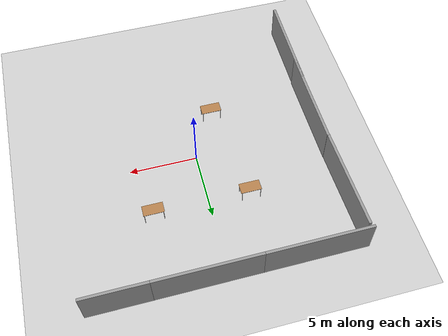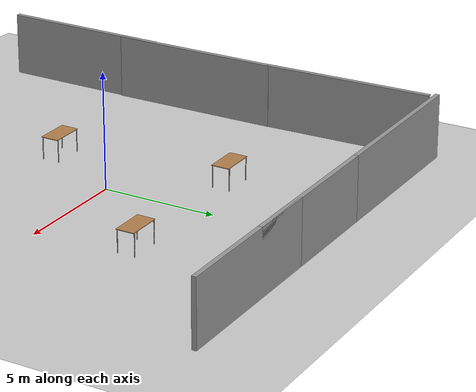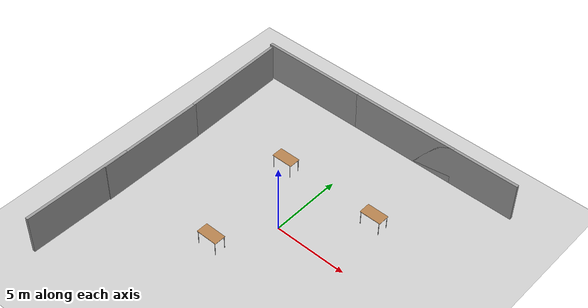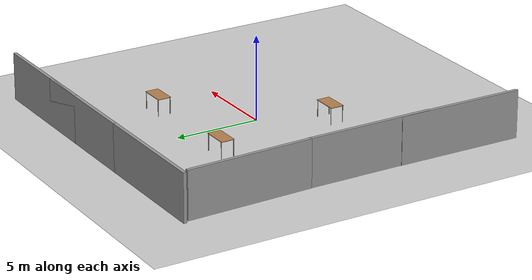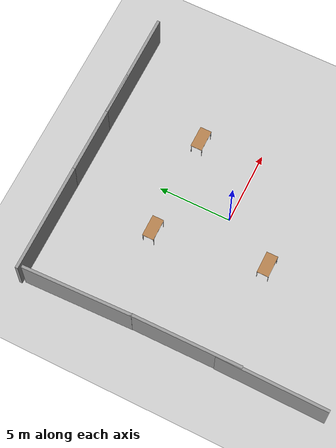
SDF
<sdf version="1.4">
 <world name="default">
  <light name="sun" type="directional">
   <pose>0 0 10 0 -0 0</pose>
   <diffuse>0.8 0.8 0.8 1</diffuse>
   <specular>0.2 0.2 0.2 1</specular>
   <attenuation>
    <range>1000</range>
    <constant>0.9</constant>
    <linear>0.01</linear>
    <quadratic>0.001</quadratic>
   </attenuation>
   <direction>-0.5 0.1 -0.9</direction>
  </light>
  <model name="ground_plane">
   <static>1</static>
   <link name="link">
    <collision name="collision">
     <geometry><plane><normal>0 0 1</normal><size>100 100</size></plane></geometry>
     <surface><friction><ode><mu>100</mu><mu2>50</mu2></ode></friction></surface>
    </collision>
    <visual name="visual">
     <cast_shadows>0</cast_shadows>
     <geometry><plane><normal>0 0 1</normal><size>100 100</size></plane></geometry>
     <material>
      <script><uri>file://media/materials/scripts/gazebo.material</uri><name>Gazebo/Grey</name></script>
     </material>
    </visual>
    <velocity_decay><linear>0</linear><angular>0</angular></velocity_decay>
   </link>
  </model>
  <physics type="ode">
   <max_step_size>0.001</max_step_size>
   <real_time_factor>1</real_time_factor>
   <real_time_update_rate>250</real_time_update_rate>
   <gravity>0 0 -9.8</gravity>
  </physics>
  <scene><ambient>0.4 0.4 0.4 1</ambient><background>0.7 0.7 0.7 1</background><shadows>1</shadows></scene>
  <model name="table">
   <static>1</static>
   <link name="link">
    <collision name="surface">
     <pose>0 0 1 0 -0 0</pose>
     <geometry><box><size>1.5 0.8 0.03</size></box></geometry>
    </collision>
    <visual name="visual1">
     <pose>0 0 1 0 -0 0</pose>
     <geometry><box><size>1.5 0.8 0.03</size></box></geometry>
     <material>
      <script><uri>file://media/materials/scripts/gazebo.material</uri><name>Gazebo/Wood</name></script>
     </material>
    </visual>
    <collision name="front_left_leg">
     <pose>0.68 0.38 0.5 0 -0 0</pose>
     <geometry><cylinder><radius>0.02</radius><length>1</length></cylinder></geometry>
    </collision>
    <visual name="front_left_leg">
     <pose>0.68 0.38 0.5 0 -0 0</pose>
     <geometry><cylinder><radius>0.02</radius><length>1</length></cylinder></geometry>
     <material>
      <script><uri>file://media/materials/scripts/gazebo.material</uri><name>Gazebo/Grey</name></script>
     </material>
    </visual>
    <collision name="front_right_leg">
     <pose>0.68 -0.38 0.5 0 -0 0</pose>
     <geometry><cylinder><radius>0.02</radius><length>1</length></cylinder></geometry>
    </collision>
    <visual name="front_right_leg">
     <pose>0.68 -0.38 0.5 0 -0 0</pose>
     <geometry><cylinder><radius>0.02</radius><length>1</length></cylinder></geometry>
     <material>
      <script><uri>file://media/materials/scripts/gazebo.material</uri><name>Gazebo/Grey</name></script>
     </material>
    </visual>
    <collision name="back_right_leg">
     <pose>-0.68 -0.38 0.5 0 -0 0</pose>
     <geometry><cylinder><radius>0.02</radius><length>1</length></cylinder></geometry>
    </collision>
    <visual name="back_right_leg">
     <pose>-0.68 -0.38 0.5 0 -0 0</pose>
     <geometry><cylinder><radius>0.02</radius><length>1</length></cylinder></geometry>
     <material>
      <script><uri>file://media/materials/scripts/gazebo.material</uri><name>Gazebo/Grey</name></script>
     </material>
    </visual>
    <collision name="back_left_leg">
     <pose>-0.68 0.38 0.5 0 -0 0</pose>
     <geometry><cylinder><radius>0.02</radius><length>1</length></cylinder></geometry>
    </collision>
    <visual name="back_left_leg">
     <pose>-0.68 0.38 0.5 0 -0 0</pose>
     <geometry><cylinder><radius>0.02</radius><length>1</length></cylinder></geometry>
     <material>
      <script><uri>file://media/materials/scripts/gazebo.material</uri><name>Gazebo/Grey</name></script>
     </material>
    </visual>
    <velocity_decay><linear>0</linear><angular>0</angular></velocity_decay>
   </link>
   <pose>4 4 0 0 -0 0</pose>
  </model>
  <model name="table_0">
   <static>1</static>
   <link name="link">
    <collision name="surface">
     <pose>0 0 1 0 -0 0</pose>
     <geometry><box><size>1.5 0.8 0.03</size></box></geometry>
    </collision>
    <visual name="visual1">
     <pose>0 0 1 0 -0 0</pose>
     <geometry><box><size>1.5 0.8 0.03</size></box></geometry>
     <material>
      <script><uri>file://media/materials/scripts/gazebo.material</uri><name>Gazebo/Wood</name></script>
     </material>
    </visual>
    <collision name="front_left_leg">
     <pose>0.68 0.38 0.5 0 -0 0</pose>
     <geometry><cylinder><radius>0.02</radius><length>1</length></cylinder></geometry>
    </collision>
    <visual name="front_left_leg">
     <pose>0.68 0.38 0.5 0 -0 0</pose>
     <geometry><cylinder><radius>0.02</radius><length>1</length></cylinder></geometry>
     <material>
      <script><uri>file://media/materials/scripts/gazebo.material</uri><name>Gazebo/Grey</name></script>
     </material>
    </visual>
    <collision name="front_right_leg">
     <pose>0.68 -0.38 0.5 0 -0 0</pose>
     <geometry><cylinder><radius>0.02</radius><length>1</length></cylinder></geometry>
    </collision>
    <visual name="front_right_leg">
     <pose>0.68 -0.38 0.5 0 -0 0</pose>
     <geometry><cylinder><radius>0.02</radius><length>1</length></cylinder></geometry>
     <material>
      <script><uri>file://media/materials/scripts/gazebo.material</uri><name>Gazebo/Grey</name></script>
     </material>
    </visual>
    <collision name="back_right_leg">
     <pose>-0.68 -0.38 0.5 0 -0 0</pose>
     <geometry><cylinder><radius>0.02</radius><length>1</length></cylinder></geometry>
    </collision>
    <visual name="back_right_leg">
     <pose>-0.68 -0.38 0.5 0 -0 0</pose>
     <geometry><cylinder><radius>0.02</radius><length>1</length></cylinder></geometry>
     <material>
      <script><uri>file://media/materials/scripts/gazebo.material</uri><name>Gazebo/Grey</name></script>
     </material>
    </visual>
    <collision name="back_left_leg">
     <pose>-0.68 0.38 0.5 0 -0 0</pose>
     <geometry><cylinder><radius>0.02</radius><length>1</length></cylinder></geometry>
    </collision>
    <visual name="back_left_leg">
     <pose>-0.68 0.38 0.5 0 -0 0</pose>
     <geometry><cylinder><radius>0.02</radius><length>1</length></cylinder></geometry>
     <material>
      <script><uri>file://media/materials/scripts/gazebo.material</uri><name>Gazebo/Grey</name></script>
     </material>
    </visual>
    <velocity_decay><linear>0</linear><angular>0</angular></velocity_decay>
   </link>
   <pose>-2 -3.58187 0 0 -0 0</pose>
  </model>
  <model name="grey_wall">
   <static>1</static>
   <link name="link">
    <pose>0 0 1.4 0 -0 0</pose>
    <collision name="collision"><geometry><box><size>7.5 0.2 2.8</size></box></geometry></collision>
    <visual name="visual">
     <cast_shadows>0</cast_shadows>
     <geometry><box><size>7.5 0.2 2.8</size></box></geometry>
     <material>
      <script>
       <uri>model://grey_wall/materials/scripts</uri>
       <uri>model://grey_wall/materials/textures</uri>
       <name>vrc/grey_wall</name>
      </script>
     </material>
    </visual>
    <velocity_decay><linear>0</linear><angular>0</angular></velocity_decay>
   </link>
   <pose>-6 10 0 0 -0 0</pose>
  </model>
  <model name="grey_wall_0">
   <static>1</static>
   <link name="link">
    <pose>0 0 1.4 0 -0 0</pose>
    <collision name="collision"><geometry><box><size>7.5 0.2 2.8</size></box></geometry></collision>
    <visual name="visual">
     <cast_shadows>0</cast_shadows>
     <geometry><box><size>7.5 0.2 2.8</size></box></geometry>
     <material>
      <script>
       <uri>model://grey_wall/materials/scripts</uri>
       <uri>model://grey_wall/materials/textures</uri>
       <name>vrc/grey_wall</name>
      </script>
     </material>
    </visual>
    <velocity_decay><linear>0</linear><angular>0</angular></velocity_decay>
   </link>
   <pose>1.46036 10 0 0 -0 0</pose>
  </model>
  <model name="grey_wall_1">
   <static>1</static>
   <link name="link">
    <pose>0 0 1.4 0 -0 0</pose>
    <collision name="collision"><geometry><box><size>7.5 0.2 2.8</size></box></geometry></collision>
    <visual name="visual">
     <cast_shadows>0</cast_shadows>
     <geometry><box><size>7.5 0.2 2.8</size></box></geometry>
     <material>
      <script>
       <uri>model://grey_wall/materials/scripts</uri>
       <uri>model://grey_wall/materials/textures</uri>
       <name>vrc/grey_wall</name>
      </script>
     </material>
    </visual>
    <velocity_decay><linear>0</linear><angular>0</angular></velocity_decay>
   </link>
   <pose>6 10 0 0 -0 0</pose>
  </model>
  <model name="grey_wall_2">
   <static>1</static>
   <link name="link">
    <pose>0 0 1.4 0 -0 0</pose>
    <collision name="collision"><geometry><box><size>7.5 0.2 2.8</size></box></geometry></collision>
    <visual name="visual">
     <cast_shadows>0</cast_shadows>
     <geometry><box><size>7.5 0.2 2.8</size></box></geometry>
     <material>
      <script>
       <uri>model://grey_wall/materials/scripts</uri>
       <uri>model://grey_wall/materials/textures</uri>
       <name>vrc/grey_wall</name>
      </script>
     </material>
    </visual>
    <velocity_decay><linear>0</linear><angular>0</angular></velocity_decay>
   </link>
   <pose>-9.37791 6.00517 0 0 -0 1.6</pose>
  </model>
  <model name="grey_wall_3">
   <static>1</static>
   <link name="link">
    <pose>0 0 1.4 0 -0 0</pose>
    <collision name="collision"><geometry><box><size>7.5 0.2 2.8</size></box></geometry></collision>
    <visual name="visual">
     <cast_shadows>0</cast_shadows>
     <geometry><box><size>7.5 0.2 2.8</size></box></geometry>
     <material>
      <script>
       <uri>model://grey_wall/materials/scripts</uri>
       <uri>model://grey_wall/materials/textures</uri>
       <name>vrc/grey_wall</name>
      </script>
     </material>
    </visual>
    <velocity_decay><linear>0</linear><angular>0</angular></velocity_decay>
   </link>
   <pose>-9.23896 -1.39784 0 0 0 -1.56637</pose>
  </model>
  <model name="grey_wall_4">
   <static>1</static>
   <link name="link">
    <pose>0 0 1.4 0 -0 0</pose>
    <collision name="collision"><geometry><box><size>7.5 0.2 2.8</size></box></geometry></collision>
    <visual name="visual">
     <cast_shadows>0</cast_shadows>
     <geometry><box><size>7.5 0.2 2.8</size></box></geometry>
     <material>
      <script>
       <uri>model://grey_wall/materials/scripts</uri>
       <uri>model://grey_wall/materials/textures</uri>
       <name>vrc/grey_wall</name>
      </script>
     </material>
    </visual>
    <velocity_decay><linear>0</linear><angular>0</angular></velocity_decay>
   </link>
   <pose>-9.29522 -7.14142 0 0 -0 1.56</pose>
  </model>
  <model name="table_1">
   <static>1</static>
   <link name="link">
    <collision name="surface">
     <pose>0 0 1 0 -0 0</pose>
     <geometry><box><size>1.5 0.8 0.03</size></box></geometry>
    </collision>
    <visual name="visual1">
     <pose>0 0 1 0 -0 0</pose>
     <geometry><box><size>1.5 0.8 0.03</size></box></geometry>
     <material>
      <script><uri>file://media/materials/scripts/gazebo.material</uri><name>Gazebo/Wood</name></script>
     </material>
    </visual>
    <collision name="front_left_leg">
     <pose>0.68 0.38 0.5 0 -0 0</pose>
     <geometry><cylinder><radius>0.02</radius><length>1</length></cylinder></geometry>
    </collision>
    <visual name="front_left_leg">
     <pose>0.68 0.38 0.5 0 -0 0</pose>
     <geometry><cylinder><radius>0.02</radius><length>1</length></cylinder></geometry>
     <material>
      <script><uri>file://media/materials/scripts/gazebo.material</uri><name>Gazebo/Grey</name></script>
     </material>
    </visual>
    <collision name="front_right_leg">
     <pose>0.68 -0.38 0.5 0 -0 0</pose>
     <geometry><cylinder><radius>0.02</radius><length>1</length></cylinder></geometry>
    </collision>
    <visual name="front_right_leg">
     <pose>0.68 -0.38 0.5 0 -0 0</pose>
     <geometry><cylinder><radius>0.02</radius><length>1</length></cylinder></geometry>
     <material>
      <script><uri>file://media/materials/scripts/gazebo.material</uri><name>Gazebo/Grey</name></script>
     </material>
    </visual>
    <collision name="back_right_leg">
     <pose>-0.68 -0.38 0.5 0 -0 0</pose>
     <geometry><cylinder><radius>0.02</radius><length>1</length></cylinder></geometry>
    </collision>
    <visual name="back_right_leg">
     <pose>-0.68 -0.38 0.5 0 -0 0</pose>
     <geometry><cylinder><radius>0.02</radius><length>1</length></cylinder></geometry>
     <material>
      <script><uri>file://media/materials/scripts/gazebo.material</uri><name>Gazebo/Grey</name></script>
     </material>
    </visual>
    <collision name="back_left_leg">
     <pose>-0.68 0.38 0.5 0 -0 0</pose>
     <geometry><cylinder><radius>0.02</radius><length>1</length></cylinder></geometry>
    </collision>
    <visual name="back_left_leg">
     <pose>-0.68 0.38 0.5 0 -0 0</pose>
     <geometry><cylinder><radius>0.02</radius><length>1</length></cylinder></geometry>
     <material>
      <script><uri>file://media/materials/scripts/gazebo.material</uri><name>Gazebo/Grey</name></script>
     </material>
    </visual>
    <velocity_decay><linear>0</linear><angular>0</angular></velocity_decay>
   </link>
   <pose>-3 4 0 0 -0 0</pose>
  </model>
 </world>
</sdf>
